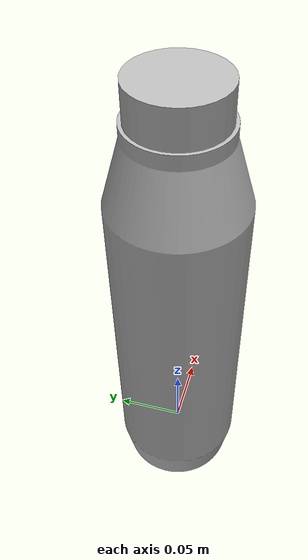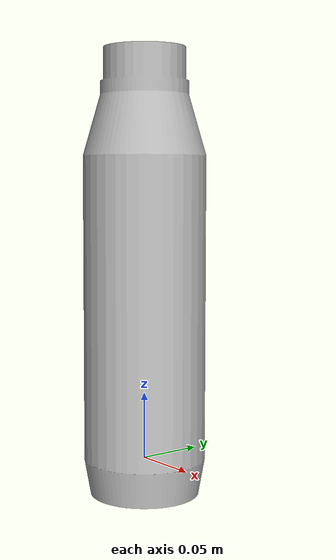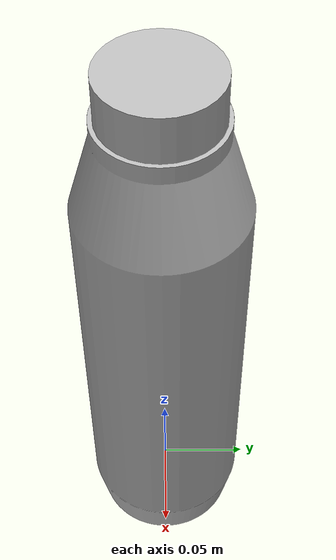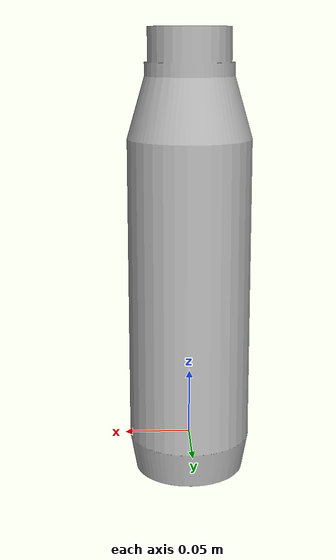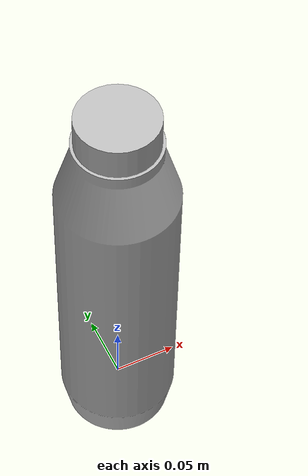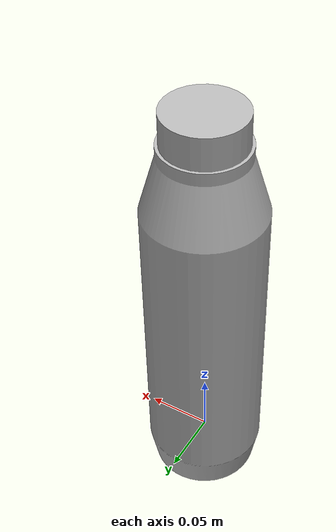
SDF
<?xml version="1.0" ?>
<sdf version="1.5">
  <model name="mpnet_bottle">
    <pose frame="world">0 0 0.0 0 0 0</pose>
    <link name="mpnet_bottle_link">
      <inertial>
        <mass>0.1</mass>
      </inertial>
      <visual name="mpnet_bottle_visual">
        <geometry>
          <mesh>
            <uri>model://mpnet_bottle/meshes/bottle.stl</uri>
            <scale>0.001 0.001 0.001</scale>
          </mesh>
        </geometry>
      </visual>

      <collision name="mpnet_bottle_collision">
        <geometry>
          <mesh>
            <uri>model://mpnet_bottle/meshes/bottle.stl</uri>
            <scale>0.001 0.001 0.001</scale>
          </mesh>
        </geometry>
      </collision>

    </link>
  </model>
</sdf>
